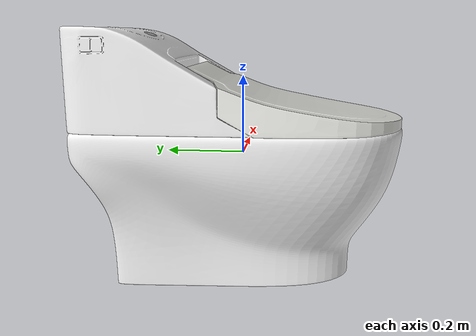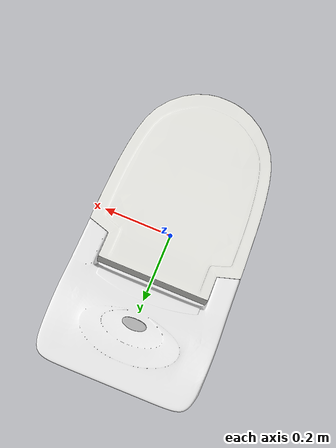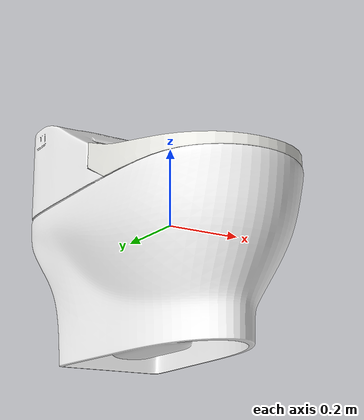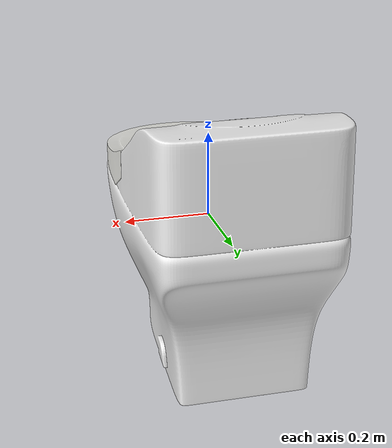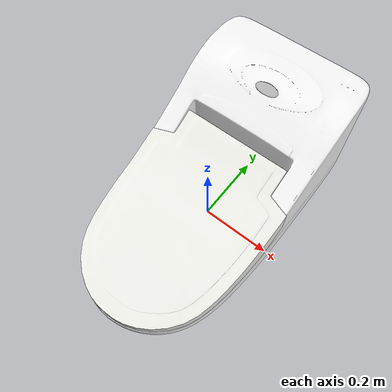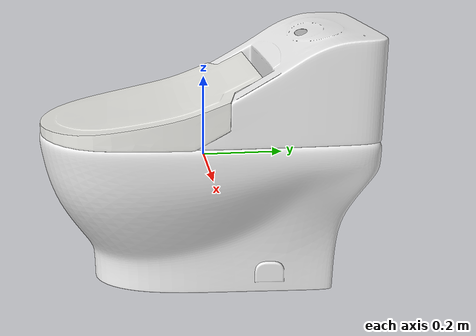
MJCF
<mujoco>
  <asset>
    <mesh file="20/ToiletMain.stl"  name="main"/>
    <mesh file="20/ToiletSeat.stl"  name="seat"/>
    <mesh file="20/ToiletLid.stl"   name="lid"/>
    <mesh file="20/ToiletKnob.stl"  name="knob"/>
  </asset>

  <worldbody>
    <body>
      <!-- 主体：亮白陶瓷 -->
      <geom type="mesh" mesh="main" rgba="0.95 0.95 0.95 1"/>
      <!-- 座圈：乳白陶瓷 -->
      <geom type="mesh" mesh="seat" rgba="0.92 0.92 0.90 1"/>
      <!-- 盖子：乳白陶瓷 -->
      <geom type="mesh" mesh="lid"  rgba="0.92 0.92 0.90 1"/>
      <!-- 旋钮：浅灰塑料 -->
      <geom type="mesh" mesh="knob" rgba="0.70 0.70 0.70 1"/>
    </body>
  </worldbody>
</mujoco>
